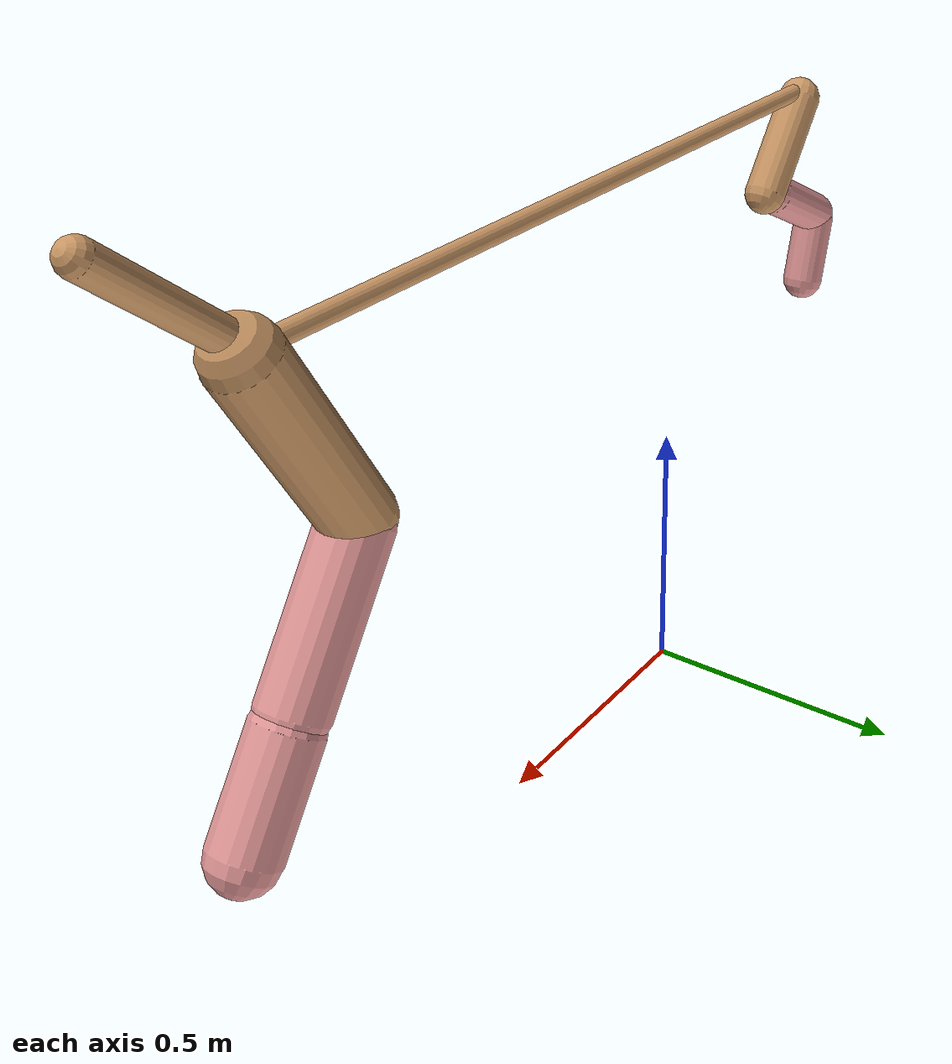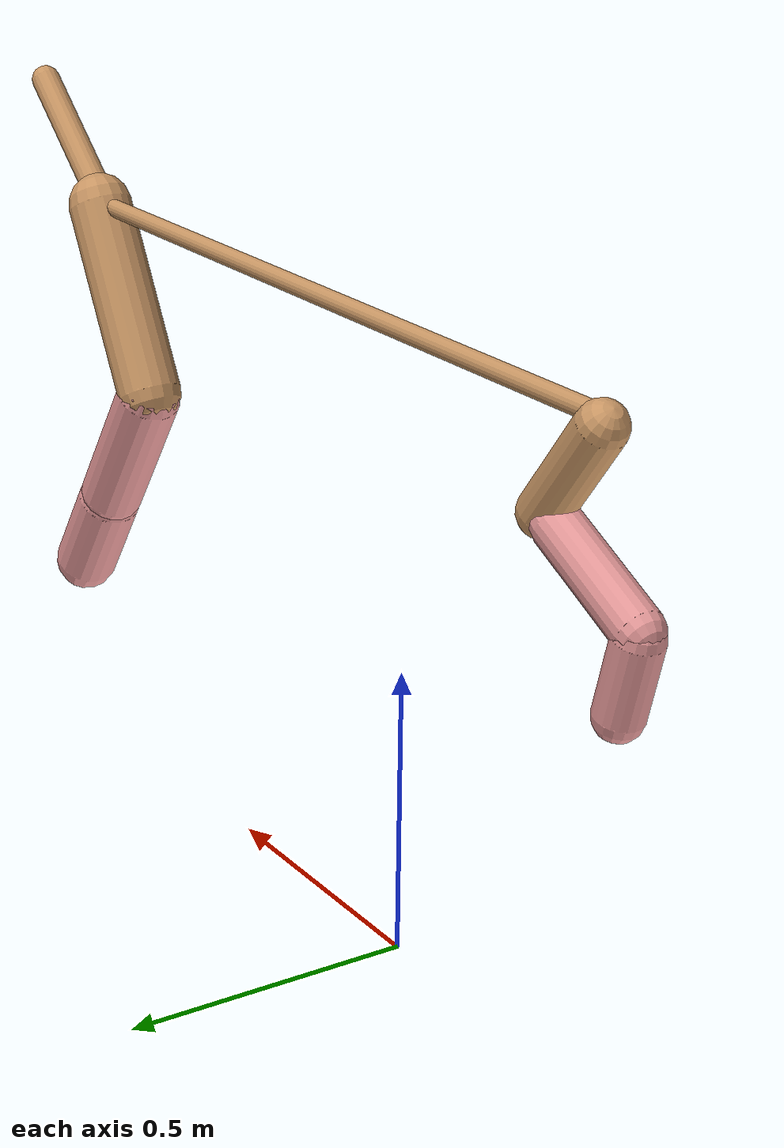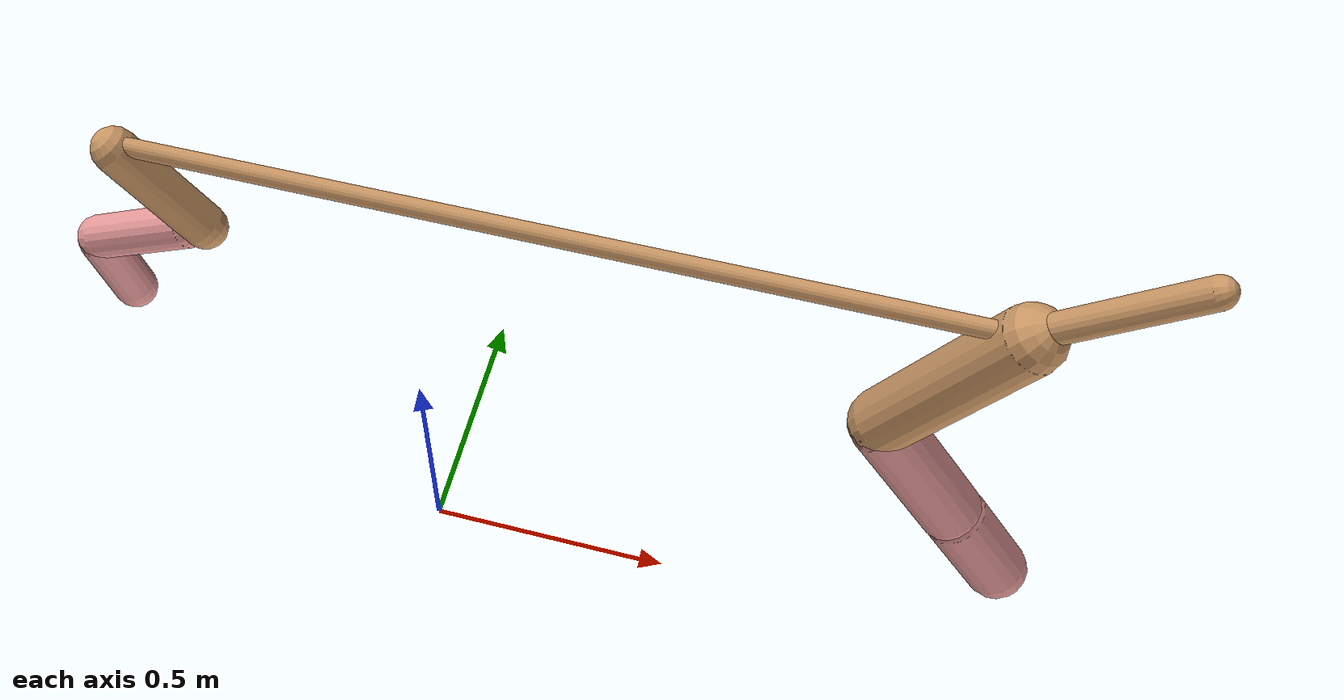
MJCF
<mujoco model="cheetah">
  <compiler angle="radian" coordinate="local" inertiafromgeom="true" settotalmass="14" />
  <default>
    <joint armature=".1" damping=".01" limited="true" solimplimit="0 .8 .03" solreflimit=".02 1" stiffness="8" />
    <geom conaffinity="0" condim="3" contype="1" friction="0.8 .1 .1" rgba="0.8 0.6 .4 1" solimp="0.0 0.8 0.01" solref="0.02 1" />
    <motor ctrllimited="true" ctrlrange="-1 1" />
  </default>
  <size nstack="300000" nuser_geom="1" />
  <option gravity="0 0 -9.81" timestep="0.01" />
  <worldbody>
    <body name="torso" pos="0.0 0.0 1.0690302746469114">
      <joint armature="0" axis="1 0 0" damping="0" limited="false" name="ignorex" pos="0 0 0" stiffness="0" type="slide" />
      <joint armature="0" axis="0 0 1" damping="0" limited="false" name="ignorez" pos="0 0 0" stiffness="0" type="slide" />
      <joint armature="0" axis="0 1 0" damping="0" limited="false" name="ignorey" pos="0 0 0" stiffness="0" type="hinge" />
      <geom fromto="-0.5 0.0 0.0 1.0472182602683446 0.0 0.0" name="torso" size="0.016522557051437247" type="capsule" />
      <geom axisangle="0 1 0 .87" name="head" pos="1.1472182602683447 0.0 0.1" size="0.026718532458155832 0.15" type="capsule" />

      <body name="bthigh" pos="-.5 0 0">
        <joint axis="0 1 0" damping="6" name="bthigh" pos="0 0 0" range="-.52 1.05" stiffness="240" type="hinge" />
        <geom axisangle="0 1 0 -3.8" name="bthigh" pos="0.07528667822833568 0.0 -0.09787268169683638" size="0.04064870998661521 0.1044671385867885" type="capsule" />
        <body name="bshin" pos="0.11057335645667135 0.0 -0.18574536339367276">
          <joint axis="0 1 0" damping="4.5" name="bshin" pos="0 0 0" range="-.785 .785" stiffness="180" type="hinge" />
          <geom axisangle="0 1 0 -2.03" name="bshin" pos="-0.10249617926516452 0.0 -0.05124808963258226" rgba="0.9 0.6 0.6 1" size="0.04064870998661521 0.10806945371047086" type="capsule" />
          <body name="bfoot" pos="-0.20499235853032904 0.0 -0.10249617926516452">
            <joint axis="0 1 0" damping="3" name="bfoot" pos="0 0 0" range="-.4 .785" stiffness="120" type="hinge" />
            <geom axisangle="0 1 0 -.27" name="bfoot" pos="0.022236097013006786 0.0 -0.07189671367538861" rgba="0.9 0.6 0.6 1" size="0.04064870998661521 0.0677235243252284" type="capsule" />
            <inertial mass="10" />
          </body>
        </body>
      </body>
      <body name="fthigh" pos="1.0472182602683446 0.0 0.0">
        <joint axis="0 1 0" damping="4.5" name="fthigh" pos="0 0 0" range="-1.5 0.8" stiffness="180" type="hinge" />
        <geom axisangle="0 1 0 .52" name="fthigh" pos="-0.09586873134985147 0.0 -0.16434639659974534" size="0.059552408962760914 0.18433998590799083" type="capsule" />
        <body name="fshin" pos="-0.19173746269970293 0.0 -0.3286927931994907">
          <joint axis="0 1 0" damping="3" name="fshin" pos="0 0 0" range="-1.2 1.1" stiffness="120" type="hinge" />
          <geom axisangle="0 1 0 -.6" name="fshin" pos="0.08895685818845787 0.0 -0.12317103441478781" rgba="0.9 0.6 0.6 1" size="0.059552408962760914 0.14691758275373704" type="capsule" />
          <body name="ffoot" pos="0.17791371637691575 0.0 -0.24634206882957563">
            <joint axis="0 1 0" damping="1.5" name="ffoot" pos="0 0 0" range="-3.1 -0.3" stiffness="60" type="hinge" />
            <geom axisangle="0 1 0 -.6" name="ffoot" pos="0.059611835325091615 0.0 -0.0927295216168092" rgba="0.9 0.6 0.6 1" size="0.059552408962760914 0.09702104521473201" type="capsule" />
            <inertial mass="10" />
          </body>
        </body>
      </body>
    </body>
  </worldbody>
  <actuator>
    <motor gear="120" joint="bthigh" name="bthigh" />
    <motor gear="90" joint="bshin" name="bshin" />
    <motor gear="60" joint="bfoot" name="bfoot" />
    <motor gear="120" joint="fthigh" name="fthigh" />
    <motor gear="60" joint="fshin" name="fshin" />
    <motor gear="30" joint="ffoot" name="ffoot" />
  </actuator>
</mujoco>
